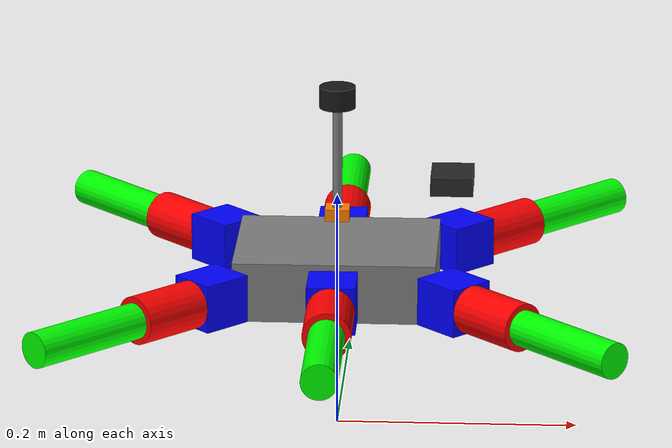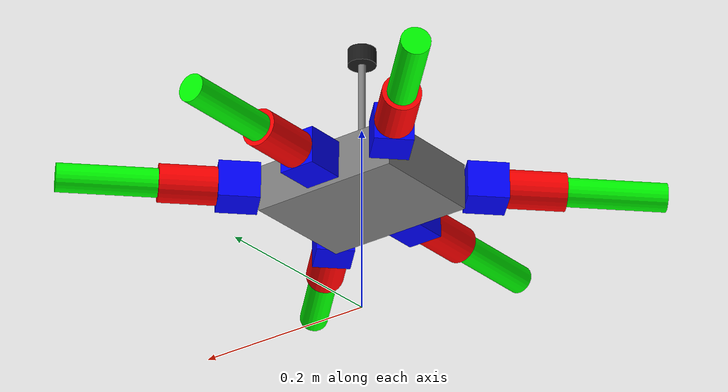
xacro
<?xml version="1.0"?>
<robot xmlns:xacro="http://www.ros.org/wiki/xacro" name="spooder">
  <xacro:arg name="config_file" default=""/>

  <!-- Properties -->
  <xacro:property name="body_length" value="0.167"/>
  <xacro:property name="body_width" value="0.126"/>
  <xacro:property name="body_height" value="0.05"/>
  <xacro:property name="coxa_length" value="0.043"/>
  <xacro:property name="femur_length" value="0.060"/>
  <xacro:property name="tibia_length" value="0.104"/>

  <!-- Include OAK-D Lite Camera (Gazebo simulation plugin) -->
  <xacro:include filename="$(find spooder_description)/urdf/gazebo_oakd.plugin.xacro"/>

  <!-- Include LiDAR (kept for backward compatibility) -->
  <xacro:include filename="$(find spooder_description)/urdf/lidar.xacro"/>

  <!-- Include IMU -->
  <xacro:include filename="$(find spooder_description)/urdf/imu.xacro"/>

  <!-- Base Link -->
  <link name="base_link">
    <visual>
      <geometry>
        <box size="${body_length} ${body_width} ${body_height}"/>
      </geometry>
      <material name="grey">
        <color rgba="0.5 0.5 0.5 1"/>
      </material>
    </visual>
    <collision>
      <geometry>
        <box size="${body_length} ${body_width} ${body_height}"/>
      </geometry>
    </collision>
    <inertial>
      <mass value="2.0"/>
      <inertia ixx="0.01" ixy="0" ixz="0" iyy="0.01" iyz="0" izz="0.01"/>
    </inertial>
  </link>

  <gazebo reference="base_link">
    <material>Gazebo/Grey</material>
    <self_collide>false</self_collide>
  </gazebo>

  <link name="base_footprint"/>
  <joint name="base_joint" type="fixed">
    <parent link="base_footprint"/>
    <child link="base_link"/>
    <origin xyz="0 0 0.135" rpy="0 0 0"/>
  </joint>

  <!-- Leg Macro -->
  <xacro:macro name="leg" params="prefix side_sign x_offset y_offset yaw">

    <!-- Coxa -->
    <joint name="${prefix}_coxa_joint" type="revolute">
      <parent link="base_link"/>
      <child link="${prefix}_coxa_link"/>
      <origin xyz="${x_offset} ${y_offset} 0" rpy="0 0 ${yaw}"/>
      <axis xyz="0 0 1"/>
      <limit lower="-0.7" upper="0.7" effort="100" velocity="10"/>
      <dynamics damping="0.1" friction="0.1"/>
    </joint>

    <link name="${prefix}_coxa_link">
      <visual>
        <geometry>
          <box size="${coxa_length} 0.04 0.04"/>
        </geometry>
        <origin xyz="${coxa_length/2} 0 0"/>
        <material name="blue">
           <color rgba="0 0 1 1"/>
        </material>
      </visual>
      <collision>
        <geometry>
          <box size="${coxa_length} 0.04 0.04"/>
        </geometry>
        <origin xyz="${coxa_length/2} 0 0"/>
      </collision>
      <inertial>
        <mass value="0.2"/>
        <inertia ixx="0.0001" ixy="0" ixz="0" iyy="0.0001" iyz="0" izz="0.0001"/>
      </inertial>
    </link>

    <gazebo reference="${prefix}_coxa_link">
      <self_collide>false</self_collide>
    </gazebo>

    <!-- Femur -->
    <joint name="${prefix}_femur_joint" type="revolute">
      <parent link="${prefix}_coxa_link"/>
      <child link="${prefix}_femur_link"/>
      <origin xyz="${coxa_length} 0 0" rpy="1.5708 0 0"/> <!-- Positive Z axis is now robot Y -->
      <axis xyz="0 0 1"/>
      <limit lower="-1.5" upper="1.5" effort="100" velocity="10"/>
      <dynamics damping="0.1" friction="0.1"/>
    </joint>

    <link name="${prefix}_femur_link">
      <visual>
        <geometry>
          <cylinder radius="0.02" length="${femur_length}"/>
        </geometry>
        <origin xyz="${femur_length/2} 0 0" rpy="0 1.5708 0"/>
        <material name="red">
          <color rgba="1 0 0 1"/>
        </material>
      </visual>
      <collision>
         <geometry>
          <cylinder radius="0.02" length="${femur_length}"/>
        </geometry>
         <origin xyz="${femur_length/2} 0 0" rpy="0 1.5708 0"/>
      </collision>
      <inertial>
        <mass value="0.3"/>
        <inertia ixx="0.0001" ixy="0" ixz="0" iyy="0.0001" iyz="0" izz="0.0001"/>
      </inertial>
    </link>

    <gazebo reference="${prefix}_femur_link">
      <self_collide>false</self_collide>
    </gazebo>

    <!-- Tibia -->
    <joint name="${prefix}_tibia_joint" type="revolute">
      <parent link="${prefix}_femur_link"/>
      <child link="${prefix}_tibia_link"/>
      <origin xyz="${femur_length} 0 0" rpy="0 0 0"/>
      <axis xyz="0 0 1"/>
      <limit lower="-2.5" upper="0.5" effort="100" velocity="10"/> <!-- Tibia bends down/in with negative values now? Wait. -->
      <dynamics damping="0.1" friction="0.1"/>
    </joint>

    <link name="${prefix}_tibia_link">
       <visual>
        <geometry>
          <cylinder radius="0.015" length="${tibia_length}"/>
        </geometry>
        <origin xyz="${tibia_length/2} 0 0" rpy="0 1.5708 0"/>
        <material name="green">
          <color rgba="0 1 0 1"/>
        </material>
      </visual>
      <collision>
        <geometry>
          <cylinder radius="0.015" length="${tibia_length}"/>
        </geometry>
         <origin xyz="${tibia_length/2} 0 0" rpy="0 1.5708 0"/>
      </collision>
      <inertial>
        <mass value="0.3"/>
        <inertia ixx="0.0001" ixy="0" ixz="0" iyy="0.0001" iyz="0" izz="0.0001"/>
      </inertial>
    </link>

      <!-- Contact Surface for Tibia tip -->
      <gazebo reference="${prefix}_tibia_link">
        <self_collide>false</self_collide>
        <mu1>2.5</mu1>
        <mu2>2.5</mu2>
        <min_depth>0.001</min_depth>
        <kp>100000.0</kp>
        <kd>10.0</kd>
      </gazebo>
  </xacro:macro>

  <!-- Instantiate Legs (6 Legs) -->
  <!-- R: Right, L: Left | F: Front, M: Middle, R: Rear -->
  <!-- Right Side -->
  <xacro:leg prefix="rf" side_sign="-1" x_offset="0.0835"  y_offset="-0.063" yaw="-0.7853"/>
  <xacro:leg prefix="rm" side_sign="-1" x_offset="0.0" y_offset="-0.063" yaw="-1.5708"/>
  <xacro:leg prefix="rr" side_sign="-1" x_offset="-0.0835" y_offset="-0.063" yaw="-2.3561"/>

  <!-- Left Side -->
  <xacro:leg prefix="lf" side_sign="1"  x_offset="0.0835"  y_offset="0.063"  yaw="0.7853"/>
  <xacro:leg prefix="lm" side_sign="1"  x_offset="0.0" y_offset="0.063"  yaw="1.5708"/>
  <xacro:leg prefix="lr" side_sign="1"  x_offset="-0.0835" y_offset="0.063"  yaw="2.3561"/>

  <xacro:gazebo_oakd_sensor parent_link="base_link" origin_xyz="0.095 0 0.08" origin_rpy="0 0 0"/>

  <!-- LiDAR Sensor (kept for backward compatibility) -->
  <xacro:lidar_sensor parent="base_link"/>

  <!-- ros2_control -->
  <ros2_control name="SpooderSystem" type="system">
    <hardware>
      <plugin>gz_ros2_control/GazeboSimSystem</plugin>
    </hardware>

    <xacro:macro name="leg_control" params="prefix">
      <joint name="${prefix}_coxa_joint">
          <command_interface name="position"/>
          <state_interface name="position"/>
          <state_interface name="velocity"/>
      </joint>
      <joint name="${prefix}_femur_joint">
          <command_interface name="position"/>
          <state_interface name="position"/>
          <state_interface name="velocity"/>
      </joint>
      <joint name="${prefix}_tibia_joint">
          <command_interface name="position"/>
          <state_interface name="position"/>
          <state_interface name="velocity"/>
      </joint>
    </xacro:macro>

    <xacro:leg_control prefix="rf"/>
    <xacro:leg_control prefix="rm"/>
    <xacro:leg_control prefix="rr"/>
    <xacro:leg_control prefix="lf"/>
    <xacro:leg_control prefix="lm"/>
    <xacro:leg_control prefix="lr"/>

  </ros2_control>

  <gazebo>
      <plugin filename="libgz_ros2_control-system.so" name="gz_ros2_control::GazeboSimROS2ControlPlugin">
        <parameters>$(arg config_file)</parameters>
      </plugin>

      <!-- Official Odometry Publisher Plugin -->
      <plugin filename="libgz-sim-odometry-publisher-system.so" name="gz::sim::systems::OdometryPublisher">
        <odom_topic>/odom</odom_topic>
        <!-- Disabling TF topic to let EKF handle it exclusively -->
        <frame_id>spooder/odom</frame_id>
        <child_frame_id>spooder/base_footprint</child_frame_id>
        <odom_publish_frequency>50</odom_publish_frequency>
        <xyz_offset>0 0 0</xyz_offset>
        <rpy_offset>0 0 0</rpy_offset>
        <gaussian_noise>0.001</gaussian_noise>
      </plugin>
  </gazebo>

  <!-- Instantiate IMU Sensor -->
  <xacro:imu_sensor parent_link="base_link"/>

</robot>

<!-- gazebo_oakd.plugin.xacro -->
<robot xmlns:xacro="http://www.ros.org/wiki/xacro">

  <!-- Gazebo OAK-D Lite Sensor Plugin for Simulation -->
  <xacro:macro name="gazebo_oakd_sensor" params="parent_link origin_xyz origin_rpy">

    <joint name="oak_d_joint" type="fixed">
      <parent link="${parent_link}"/>
      <child link="oak_d_base_link"/>
      <origin xyz="${origin_xyz}" rpy="${origin_rpy}"/>
   </joint>

    <link name="oak_d_base_link">
      <visual>
        <geometry>
          <box size="0.035 0.045 0.015"/>
        </geometry>
        <material name="oakd_dark">
          <color rgba="0.15 0.15 0.15 1"/>
       </material>
     </visual>
      <collision>
        <geometry>
          <box size="0.035 0.045 0.015"/>
       </geometry>
     </collision>
      <inertial>
        <mass value="0.05"/>
        <inertia ixx="0.00001" ixy="0" ixz="0" iyy="0.00001" iyz="0" izz="0.00001"/>
     </inertial>
   </link>

    <!-- Left grayscale camera (stereo pair, +Y direction = robot's left since
         base_link uses REP 103 with +Y left). -->
    <joint name="oak_d_left_camera_joint" type="fixed">
      <parent link="oak_d_base_link"/>
      <child link="oak_d_left_camera_link"/>
      <origin xyz="0 0.0375 0" rpy="0 0 0"/>
   </joint>

    <link name="oak_d_left_camera_link"/>

    <!-- Right grayscale camera (stereo pair, 7.5 cm baseline to the right). -->
    <joint name="oak_d_right_camera_joint" type="fixed">
      <parent link="oak_d_base_link"/>
      <child link="oak_d_right_camera_link"/>
      <origin xyz="0 -0.0375 0" rpy="0 0 0"/>
   </joint>

    <link name="oak_d_right_camera_link"/>

    <!-- RGB camera (offset from stereo pair along +Z to match hardware layout). -->
    <joint name="oak_d_rgb_camera_joint" type="fixed">
      <parent link="oak_d_base_link"/>
      <child link="oak_d_rgb_camera_link"/>
      <origin xyz="0 0 0.008" rpy="0 0 0"/>
   </joint>

    <link name="oak_d_rgb_camera_link"/>

    <gazebo reference="oak_d_left_camera_link">
      <sensor name="oak_d_depth_camera" type="depth_camera">
        <update_rate>30</update_rate>
        <topic>/oak_d</topic>
        <gz_frame_id>spooder/oak_d_base_link</gz_frame_id>
        <pose>0 0 0 0 -0.349 0</pose>  <!-- pitch -20deg downward tilt -->

        <camera>
          <horizontal_fov>1.239</horizontal_fov>  <!-- ~71 degrees -->
          <vertical_fov>0.873</vertical_fov>     <!-- ~50 degrees -->
          <image>
            <width>640</width>
            <height>400</height>
            <format>R8G8B8</format>
         </image>
          <clip>
            <near>0.2</near>
            <far>10.0</far>
         </clip>
          <depth_camera>
            <clip>
              <near>0.2</near>
              <far>10.0</far>
           </clip>
         </depth_camera>
       </camera>

        <always_on>1</always_on>
        <visualize>true</visualize>
     </sensor>
   </gazebo>

    <!-- RGB camera for visualization, mounted on the same stereo pair so its
         pose matches the depth camera. -->
    <gazebo reference="oak_d_left_camera_link">
      <sensor name="oak_d_rgb_camera" type="camera">
        <update_rate>30</update_rate>
        <topic>/oak_d/rgb</topic>
        <gz_frame_id>spooder/oak_d_base_link</gz_frame_id>
        <pose>0 0 0 0 -0.349 0</pose>  <!-- match depth camera tilt -->

        <camera>
          <horizontal_fov>1.221</horizontal_fov>  <!-- ~70 degrees -->
          <vertical_fov>0.873</vertical_fov>     <!-- ~50 degrees -->
          <image>
            <width>1280</width>
            <height>720</height>
            <format>R8G8B8</format>
         </image>
          <clip>
            <near>0.1</near>
            <far>100.0</far>
         </clip>
       </camera>

        <always_on>1</always_on>
        <visualize>false</visualize>
     </sensor>
   </gazebo>

 </xacro:macro>

</robot>

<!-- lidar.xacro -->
<robot xmlns:xacro="http://www.ros.org/wiki/xacro">

  <xacro:macro name="lidar_sensor" params="parent">

    <!-- LiDAR Link -->
    <link name="lidar_link">
      <visual>
        <geometry>
          <cylinder radius="0.015" length="0.018"/>
        </geometry>
        <material name="lidar_black">
          <color rgba="0.1 0.1 0.1 1"/>
        </material>
      </visual>
      <collision>
        <geometry>
          <cylinder radius="0.015" length="0.018"/>
        </geometry>
      </collision>
      <inertial>
        <mass value="0.125"/>
        <inertia ixx="0.0001" ixy="0" ixz="0" iyy="0.0001" iyz="0" izz="0.0001"/>
      </inertial>
    </link>

    <!-- Joint connecting LiDAR to parent (base_link) -->
    <joint name="lidar_joint" type="fixed">
      <parent link="${parent}"/>
      <child link="lidar_link"/>
      <origin xyz="0 0 0.15" rpy="0 0 0"/>
    </joint>

    <!-- Visual Mount (Stand) -->
    <joint name="lidar_mount_joint" type="fixed">
      <parent link="${parent}"/>
      <child link="lidar_mount"/>
      <origin xyz="0 0 0.10" rpy="0 0 0"/>
    </joint>

    <link name="lidar_mount">
      <visual>
        <geometry>
          <cylinder radius="0.004" length="0.10"/>
        </geometry>
        <material name="grey">
          <color rgba="0.5 0.5 0.5 1"/>
        </material>
      </visual>
      <collision>
         <geometry>
          <cylinder radius="0.004" length="0.11"/>
        </geometry>
      </collision>
    </link>

    <!-- Gazebo LiDAR Sensor Plugin -->
    <gazebo reference="lidar_link">
      <sensor name="lidar_sensor" type="gpu_lidar">
        <topic>/scan</topic>
        <gz_frame_id>spooder/lidar_link</gz_frame_id>
        <update_rate>10</update_rate>
        <lidar>
          <scan>
            <horizontal>
              <samples>360</samples>
              <resolution>1</resolution>
              <min_angle>-3.14159</min_angle>
              <max_angle>3.14159</max_angle>
            </horizontal>
          </scan>
          <range>
            <min>0.12</min>
            <max>10.0</max>
            <resolution>0.01</resolution>
          </range>
          <noise>
            <type>gaussian</type>
            <mean>0.0</mean>
            <stddev>0.01</stddev>
          </noise>
        </lidar>
        <always_on>1</always_on>
        <visualize>true</visualize>
      </sensor>
    </gazebo>

  </xacro:macro>

</robot>

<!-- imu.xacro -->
<robot xmlns:xacro="http://www.ros.org/wiki/xacro">

  <xacro:macro name="imu_sensor" params="parent_link">
    <link name="imu_link">
      <visual>
        <geometry>
          <box size="0.02 0.02 0.01"/>
        </geometry>
        <material name="orange">
          <color rgba="1.0 0.5 0.0 1.0"/>
        </material>
      </visual>
      <collision>
        <geometry>
          <box size="0.02 0.02 0.01"/>
        </geometry>
      </collision>
      <inertial>
        <mass value="0.01"/>
        <inertia ixx="0.00001" ixy="0" ixz="0" iyy="0.00001" iyz="0" izz="0.00001"/>
      </inertial>
    </link>

    <joint name="imu_joint" type="fixed">
      <parent link="${parent_link}"/>
      <child link="imu_link"/>
      <origin xyz="0 0 0.05" rpy="0 0 0"/>
    </joint>

    <gazebo reference="imu_link">
      <sensor name="imu_sensor" type="imu">
        <always_on>true</always_on>
        <update_rate>100</update_rate>
        <visualize>false</visualize>
        <topic>imu</topic>
        <pose>0 0 0 0 0 0</pose>
        <imu>
          <angular_velocity>
            <x>
              <noise type="gaussian">
                <mean>0.0</mean>
                <stddev>2e-4</stddev>
                <bias_mean>0.0000075</bias_mean>
                <bias_stddev>0.0000008</bias_stddev>
              </noise>
            </x>
            <y>
              <noise type="gaussian">
                <mean>0.0</mean>
                <stddev>2e-4</stddev>
                <bias_mean>0.0000075</bias_mean>
                <bias_stddev>0.0000008</bias_stddev>
              </noise>
            </y>
            <z>
              <noise type="gaussian">
                <mean>0.0</mean>
                <stddev>2e-4</stddev>
                <bias_mean>0.0000075</bias_mean>
                <bias_stddev>0.0000008</bias_stddev>
              </noise>
            </z>
          </angular_velocity>
          <linear_acceleration>
            <x>
              <noise type="gaussian">
                <mean>0.0</mean>
                <stddev>1.7e-2</stddev>
                <bias_mean>0.1</bias_mean>
                <bias_stddev>0.001</bias_stddev>
              </noise>
            </x>
            <y>
              <noise type="gaussian">
                <mean>0.0</mean>
                <stddev>1.7e-2</stddev>
                <bias_mean>0.1</bias_mean>
                <bias_stddev>0.001</bias_stddev>
              </noise>
            </y>
            <z>
              <noise type="gaussian">
                <mean>0.0</mean>
                <stddev>1.7e-2</stddev>
                <bias_mean>0.1</bias_mean>
                <bias_stddev>0.001</bias_stddev>
              </noise>
            </z>
          </linear_acceleration>
        </imu>
      </sensor>
    </gazebo>
  </xacro:macro>

</robot>
